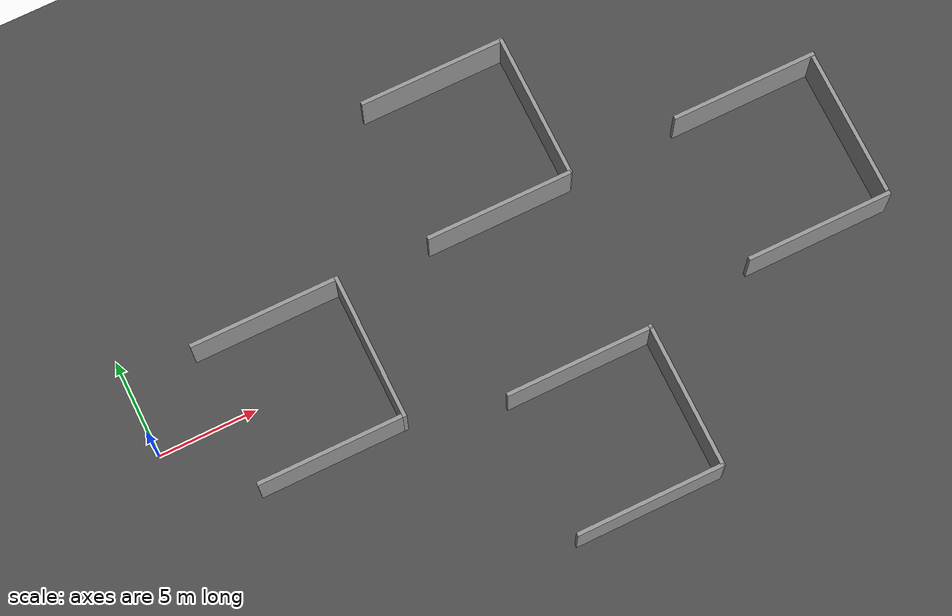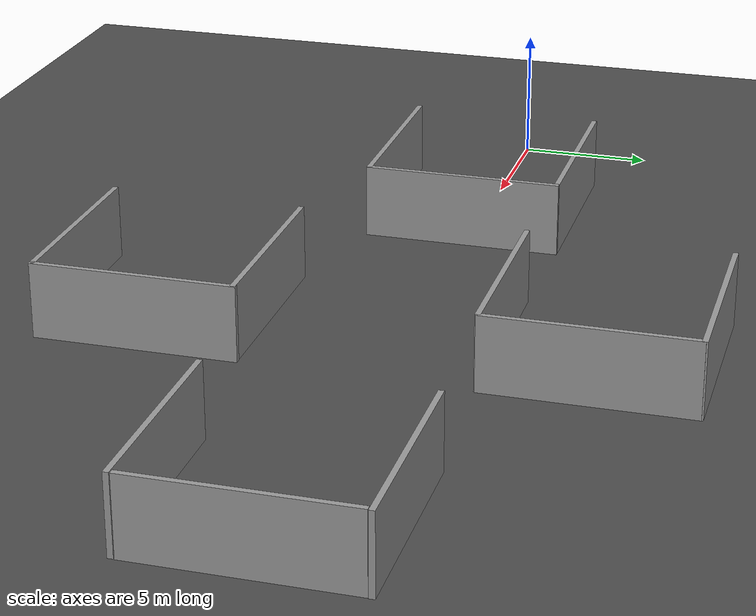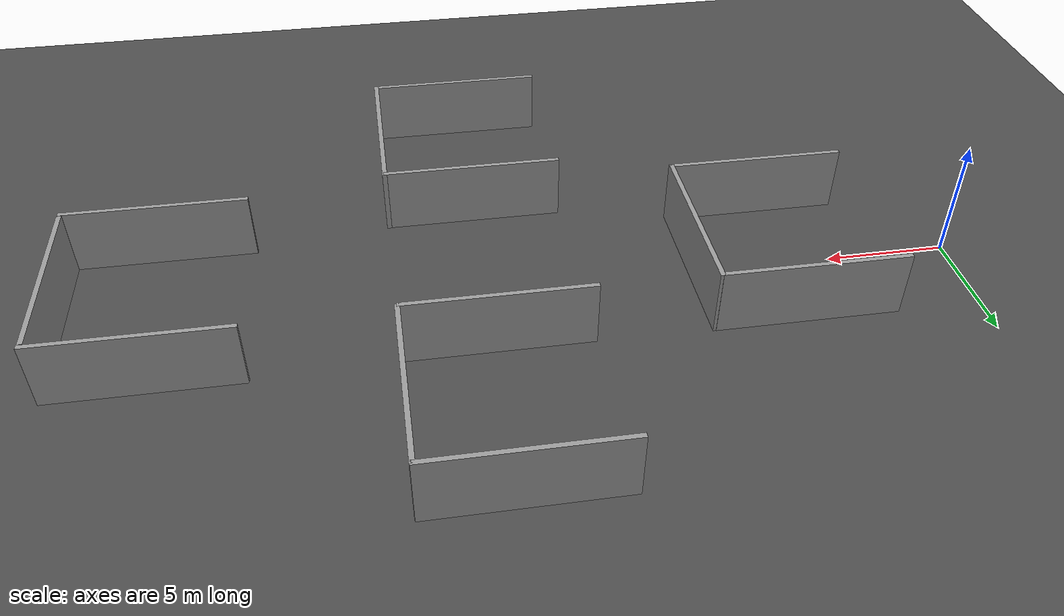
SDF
<sdf version="1.6">
 <world name="default">
  <scene><ambient>0.4 0.4 0.4 1</ambient><background>0.7 0.7 0.7 1</background><shadows>0</shadows></scene>
  <light name="sun" type="directional">
   <pose>0 0 10 0 -0 0</pose>
   <diffuse>0.8 0.8 0.8 1</diffuse>
   <specular>0.1 0.1 0.1 1</specular>
   <attenuation>
    <range>1000</range>
    <constant>0.9</constant>
    <linear>0.01</linear>
    <quadratic>0.001</quadratic>
   </attenuation>
   <direction>-0.5 0.5 -1</direction>
  </light>
  <model name="asphalt_plane">
   <pose>36.6016 11.2763 0 0 -0 0</pose>
   <static>1</static>
   <link name="link">
    <collision name="collision"><geometry><box><size>10131.8 10000 0.01</size></box></geometry></collision>
    <visual name="visual">
     <cast_shadows>0</cast_shadows>
     <geometry><box><size>101.318 100 0.01</size></box></geometry>
     <material>
      <script>
       <uri>file:///home/jtorde/Desktop/ws/src/acl-ros-extra-v2/acl_sim/urdf/grass/materials/scripts</uri>
       <uri>file:///home/jtorde/Desktop/ws/src/acl-ros-extra-v2/acl_sim/urdf/grass/materials/textures</uri>
       <name>vrc/asphalt</name>
      </script>
     </material>
    </visual>
   </link>
  </model>
  <gravity>0 0 -9.8</gravity>
  <magnetic_field>6e-06 2.3e-05 -4.2e-05</magnetic_field>
  <atmosphere type="adiabatic"/>
  <physics name="default_physics" default="0" type="ode">
   <max_step_size>0.001</max_step_size>
   <real_time_factor>1</real_time_factor>
   <real_time_update_rate>1000</real_time_update_rate>
  </physics>
  <spherical_coordinates>
   <surface_model>EARTH_WGS84</surface_model>
   <latitude_deg>0</latitude_deg>
   <longitude_deg>0</longitude_deg>
   <elevation>0</elevation>
   <heading_deg>0</heading_deg>
  </spherical_coordinates>
  <model name="grey_wall">
   <static>1</static>
   <link name="link">
    <pose>0 0 1.4 0 -0 0</pose>
    <collision name="collision"><geometry><box><size>7.5 0.2 2.8</size></box></geometry></collision>
    <visual name="visual">
     <cast_shadows>0</cast_shadows>
     <geometry><box><size>7.5 0.2 2.8</size></box></geometry>
     <material>
      <script>
       <uri>model://grey_wall/materials/scripts</uri>
       <uri>model://grey_wall/materials/textures</uri>
       <name>vrc/grey_wall</name>
      </script>
     </material>
    </visual>
   </link>
   <pose>7.17981 3.45498 -0.00278 0 -0 0</pose>
  </model>
  <model name="grey_wall_clone">
   <static>1</static>
   <link name="link">
    <pose>0 0 1.4 0 -0 0</pose>
    <collision name="collision"><geometry><box><size>7.5 0.2 2.8</size></box></geometry></collision>
    <visual name="visual">
     <cast_shadows>0</cast_shadows>
     <geometry><box><size>7.5 0.2 2.8</size></box></geometry>
     <material>
      <script>
       <uri>model://grey_wall/materials/scripts</uri>
       <uri>model://grey_wall/materials/textures</uri>
       <name>vrc/grey_wall</name>
      </script>
     </material>
    </visual>
   </link>
   <pose>10.9701 -0.207681 0 0 0 -1.56755</pose>
  </model>
  <model name="grey_wall_clone_0">
   <static>1</static>
   <link name="link">
    <pose>0 0 1.4 0 -0 0</pose>
    <collision name="collision"><geometry><box><size>7.5 0.2 2.8</size></box></geometry></collision>
    <visual name="visual">
     <cast_shadows>0</cast_shadows>
     <geometry><box><size>7.5 0.2 2.8</size></box></geometry>
     <material>
      <script>
       <uri>model://grey_wall/materials/scripts</uri>
       <uri>model://grey_wall/materials/textures</uri>
       <name>vrc/grey_wall</name>
      </script>
     </material>
    </visual>
   </link>
   <pose>7.28139 -3.85179 0 0 -0 0</pose>
  </model>
  <model name="grey_wall_clone_0_clone">
   <static>1</static>
   <link name="link">
    <pose>0 0 1.4 0 -0 0</pose>
    <collision name="collision"><geometry><box><size>7.5 0.2 2.8</size></box></geometry></collision>
    <visual name="visual">
     <cast_shadows>0</cast_shadows>
     <geometry><box><size>7.5 0.2 2.8</size></box></geometry>
     <material>
      <script>
       <uri>model://grey_wall/materials/scripts</uri>
       <uri>model://grey_wall/materials/textures</uri>
       <name>vrc/grey_wall</name>
      </script>
     </material>
    </visual>
   </link>
   <pose>19.4248 -12.3728 0 0 -0 0</pose>
  </model>
  <model name="grey_wall_clone_clone">
   <static>1</static>
   <link name="link">
    <pose>0 0 1.4 0 -0 0</pose>
    <collision name="collision"><geometry><box><size>7.5 0.2 2.8</size></box></geometry></collision>
    <visual name="visual">
     <cast_shadows>0</cast_shadows>
     <geometry><box><size>7.5 0.2 2.8</size></box></geometry>
     <material>
      <script>
       <uri>model://grey_wall/materials/scripts</uri>
       <uri>model://grey_wall/materials/textures</uri>
       <name>vrc/grey_wall</name>
      </script>
     </material>
    </visual>
   </link>
   <pose>23.1352 -8.71129 0 0 0 -1.56755</pose>
  </model>
  <model name="grey_wall_clone_1">
   <static>1</static>
   <link name="link">
    <pose>0 0 1.4 0 -0 0</pose>
    <collision name="collision"><geometry><box><size>7.5 0.2 2.8</size></box></geometry></collision>
    <visual name="visual">
     <cast_shadows>0</cast_shadows>
     <geometry><box><size>7.5 0.2 2.8</size></box></geometry>
     <material>
      <script>
       <uri>model://grey_wall/materials/scripts</uri>
       <uri>model://grey_wall/materials/textures</uri>
       <name>vrc/grey_wall</name>
      </script>
     </material>
    </visual>
   </link>
   <pose>19.4122 -5.07849 0 0 -0 0</pose>
  </model>
  <model name="grey_wall_clone_1_clone">
   <static>1</static>
   <link name="link">
    <pose>0 0 1.4 0 -0 0</pose>
    <collision name="collision"><geometry><box><size>7.5 0.2 2.8</size></box></geometry></collision>
    <visual name="visual">
     <cast_shadows>0</cast_shadows>
     <geometry><box><size>7.5 0.2 2.8</size></box></geometry>
     <material>
      <script>
       <uri>model://grey_wall/materials/scripts</uri>
       <uri>model://grey_wall/materials/textures</uri>
       <name>vrc/grey_wall</name>
      </script>
     </material>
    </visual>
   </link>
   <pose>19.3697 3.35203 0 0 -0 0</pose>
  </model>
  <model name="grey_wall_clone_0_clone_clone">
   <static>1</static>
   <link name="link">
    <pose>0 0 1.4 0 -0 0</pose>
    <collision name="collision"><geometry><box><size>7.5 0.2 2.8</size></box></geometry></collision>
    <visual name="visual">
     <cast_shadows>0</cast_shadows>
     <geometry><box><size>7.5 0.2 2.8</size></box></geometry>
     <material>
      <script>
       <uri>model://grey_wall/materials/scripts</uri>
       <uri>model://grey_wall/materials/textures</uri>
       <name>vrc/grey_wall</name>
      </script>
     </material>
    </visual>
   </link>
   <pose>19.4085 10.7569 0 0 -0 0</pose>
  </model>
  <model name="grey_wall_clone_clone_clone">
   <static>1</static>
   <link name="link">
    <pose>0 0 1.4 0 -0 0</pose>
    <collision name="collision"><geometry><box><size>7.5 0.2 2.8</size></box></geometry></collision>
    <visual name="visual">
     <cast_shadows>0</cast_shadows>
     <geometry><box><size>7.5 0.2 2.8</size></box></geometry>
     <material>
      <script>
       <uri>model://grey_wall/materials/scripts</uri>
       <uri>model://grey_wall/materials/textures</uri>
       <name>vrc/grey_wall</name>
      </script>
     </material>
    </visual>
   </link>
   <pose>23.0879 7.04555 0 0 0 -1.56755</pose>
  </model>
  <model name="grey_wall_clone_clone_clone_0">
   <static>1</static>
   <link name="link">
    <pose>0 0 1.4 0 -0 0</pose>
    <collision name="collision"><geometry><box><size>7.5 0.2 2.8</size></box></geometry></collision>
    <visual name="visual">
     <cast_shadows>0</cast_shadows>
     <geometry><box><size>7.5 0.2 2.8</size></box></geometry>
     <material>
      <script>
       <uri>model://grey_wall/materials/scripts</uri>
       <uri>model://grey_wall/materials/textures</uri>
       <name>vrc/grey_wall</name>
      </script>
     </material>
    </visual>
   </link>
   <pose>36.1368 -0.264908 0 0 0 -1.56755</pose>
  </model>
  <model name="grey_wall_clone_1_clone_0">
   <static>1</static>
   <link name="link">
    <pose>0 0 1.4 0 -0 0</pose>
    <collision name="collision"><geometry><box><size>7.5 0.2 2.8</size></box></geometry></collision>
    <visual name="visual">
     <cast_shadows>0</cast_shadows>
     <geometry><box><size>7.5 0.2 2.8</size></box></geometry>
     <material>
      <script>
       <uri>model://grey_wall/materials/scripts</uri>
       <uri>model://grey_wall/materials/textures</uri>
       <name>vrc/grey_wall</name>
      </script>
     </material>
    </visual>
   </link>
   <pose>32.493 3.60419 0 0 -0 0</pose>
  </model>
  <model name="grey_wall_clone_0_clone_clone_0">
   <static>1</static>
   <link name="link">
    <pose>0 0 1.4 0 -0 0</pose>
    <collision name="collision"><geometry><box><size>7.5 0.2 2.8</size></box></geometry></collision>
    <visual name="visual">
     <cast_shadows>0</cast_shadows>
     <geometry><box><size>7.5 0.2 2.8</size></box></geometry>
     <material>
      <script>
       <uri>model://grey_wall/materials/scripts</uri>
       <uri>model://grey_wall/materials/textures</uri>
       <name>vrc/grey_wall</name>
      </script>
     </material>
    </visual>
   </link>
   <pose>32.4864 -4.14553 0 0 -0 0</pose>
  </model>
 </world>
</sdf>
